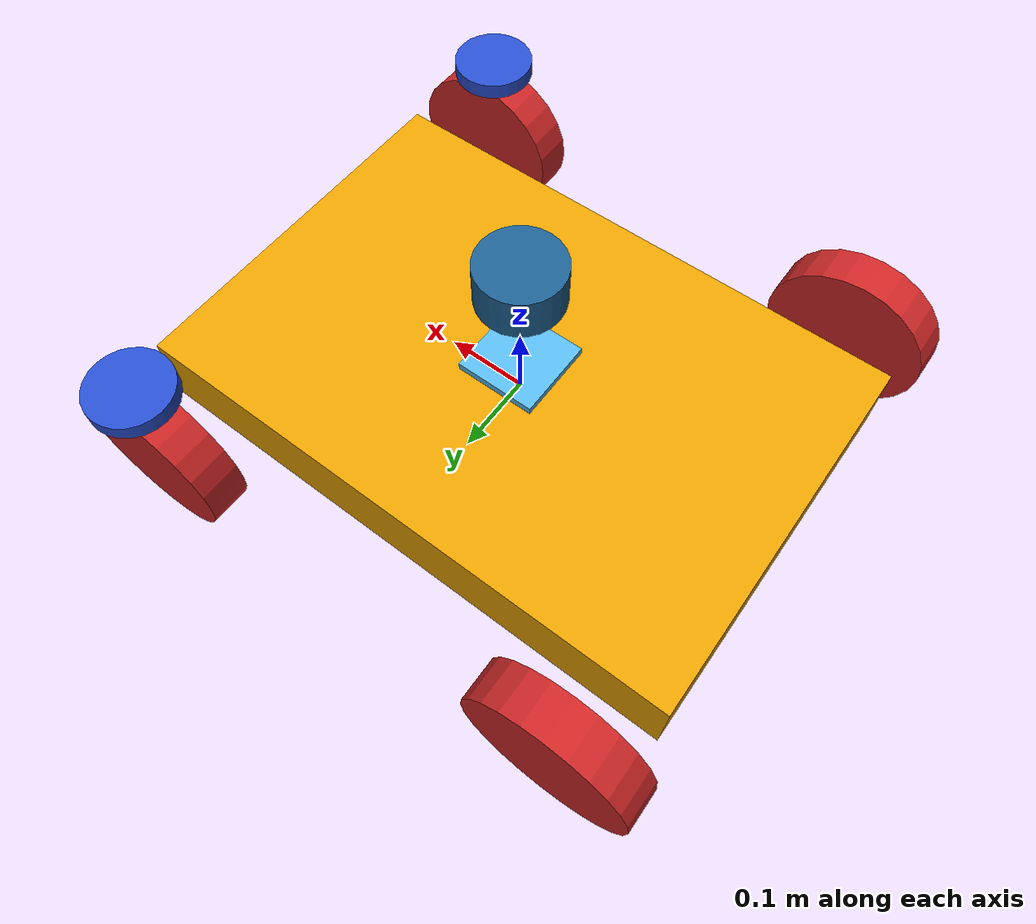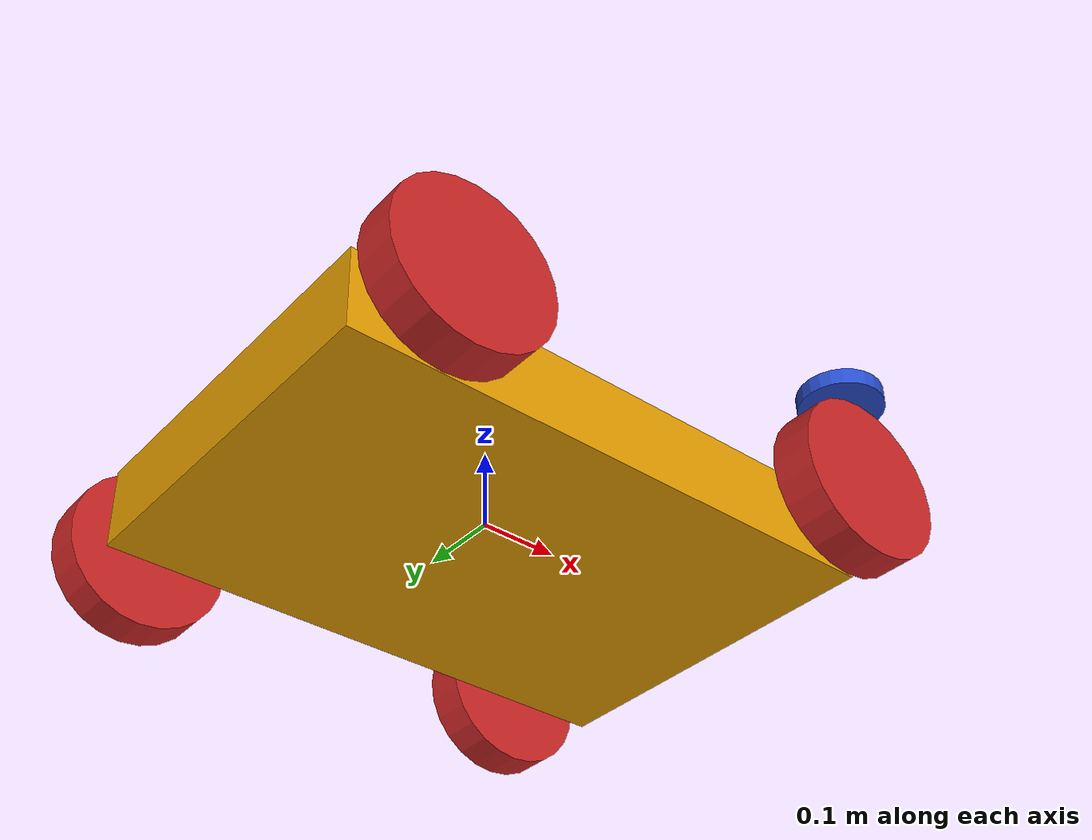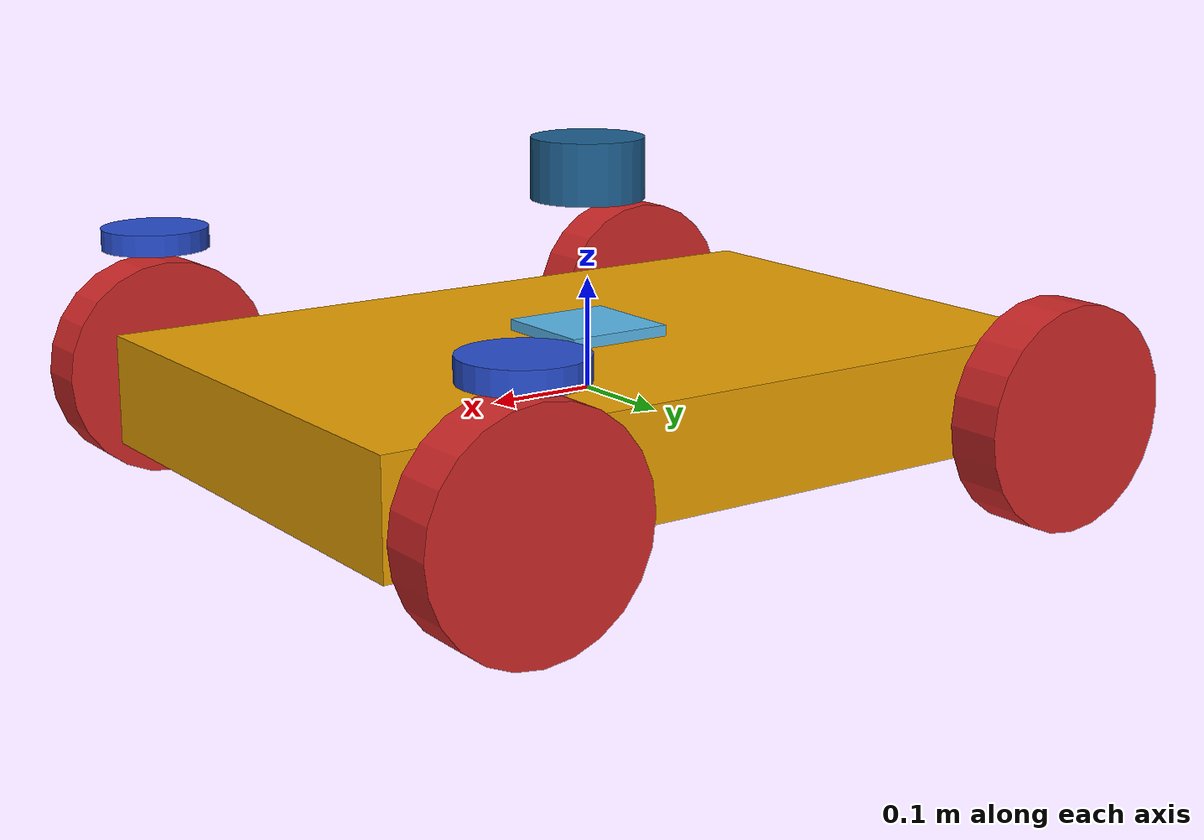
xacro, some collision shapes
<?xml version="1.0"?>
<robot name="mobile_base" xmlns:xacro="http://wiki.ros.org/xacro">
    <!-- Include xacro for inertials, materials and wheels -->
    <xacro:include filename="$(find mobile_base)/urdf/wheel/wheel.xacro" />
    <xacro:include filename="$(find mobile_base)/urdf/hesai_lidar/pandar_XT32M2X.urdf.xacro" />
    <xacro:include filename="$(find mobile_base)/urdf/see3cam/see3cam.urdf.xacro" />

    <!-- Required arg for melodic and kinetic... -->
    <xacro:arg name="namespace" default="/mobile_base" />
    <xacro:property name="namespace" value="$(arg namespace)" scope="global" />

    <!-- Materials -->
    <xacro:macro name="box_inertia" params="m w h d">
        <inertial>
            <origin xyz="0 0 0" rpy="${pi/2} 0 ${pi/2}" />
            <mass value="${m}" />
            <inertia ixx="${(m/12) * (h*h + d*d)}" ixy="0.0" ixz="0.0" iyy="${(m/12) * (w*w + d*d)}"
                iyz="0.0" izz="${(m/12) * (w*w + h*h)}" />
        </inertial>
    </xacro:macro>

    <xacro:macro name="cylinder_inertia" params="m r h">
        <inertial>
            <origin xyz="0 0 0" rpy="${pi/2} 0 0" />
            <mass value="${m}" />
            <inertia ixx="${(m/12) * (3*r*r + h*h)}" ixy="0" ixz="0" iyy="${(m/12) * (3*r*r + h*h)}"
                iyz="0" izz="${(m/2) * (r*r)}" />
        </inertial>
    </xacro:macro>

    <xacro:macro name="sphere_inertia" params="m r">
        <inertial>
            <mass value="${m}" />
            <inertia ixx="${(2/5) * m * (r*r)}" ixy="0.0" ixz="0.0" iyy="${(2/5) * m * (r*r)}"
                iyz="0.0" izz="${(2/5) * m * (r*r)}" />
        </inertial>
    </xacro:macro>

    <!-- Math constants -->
    <xacro:property name="deg_to_rad" value="0.01745329251994329577" />

    <!-- Robot base dimensions -->
    <xacro:property name="base_length" value="0.7" />
    <xacro:property name="base_width" value="0.47" />
    <xacro:property name="base_height" value="0.1" />
    <xacro:property name="base_mass" value="20" />
    <!-- origin mass 5 -->

    <!-- Wheel link dimensions -->
    <xacro:property name="wheel_radius" value="0.1" />
    <xacro:property name="wheel_thickness" value="0.05" />
    <xacro:property name="wheel_mass" value="1" />

    <!-- Steering link dimensions -->
    <xacro:property name="steer_radius" value="0.05" />
    <xacro:property name="steer_thickness" value="0.02" />
    <xacro:property name="steer_mass" value="1" />

    <!-- Axle positions -->
    <xacro:property name="axle_offset" value="0.075" />
    <xacro:property name="steer_offset" value="0.02" />

    <!-- Base link -->
    <link name="base_link">
        <visual>
            <origin xyz="-0.275 0 0" rpy="3.14 0 0" />
            <geometry>
                <!-- 修改mesh,使用dae文件,使用包定位，不要用绝对路径 -->
                <mesh
                    filename="file:///home/simon/SA/mobile_base_ws/src/mobile_base/urdf/base/meshes/moveo_body.dae" />
            </geometry>
        </visual>
        <collision>
            <origin xyz="0 0 0" rpy="0 0 0" />
            <geometry>
                <box size="${base_length} ${base_width} ${base_height}" />
            </geometry>
        </collision>
        <xacro:solid_cuboid_inertial
            rpy="0 0 0" xyz="0 0 0"
            mass="${base_mass}"
            x="${base_length}" y="${base_width}" z="${base_height}" />
    </link>

    <!-- Robot Footprint -->
    <link name="base_footprint">
        <xacro:box_inertia m="0" w="0" d="0" h="0" />
    </link>

    <joint name="base_joint" type="fixed">
        <parent link="base_link" />
        <child link="base_footprint" />
        <origin xyz="0.0 0.0 ${-(wheel_radius+ 0.05)}" rpy="0 0 0" />
    </joint>

    <!-- Steerable front wheels -->
    <xacro:front_wheel_lr
        name="front_right"
        parent="base"
        reflect="-1"
        wheel_radius="${wheel_radius}"
        wheel_thickness="${wheel_thickness}"
        wheel_mass="${wheel_mass}"
        steer_radius="${steer_radius}"
        steer_thickness="${steer_thickness}"
        steer_mass="${steer_mass}"
        base_length="${base_length}"
        base_width="${base_width}"
        axle_offset="${axle_offset}"
        steer_height="${wheel_radius+steer_offset}">
    </xacro:front_wheel_lr>
    <xacro:front_wheel_lr
        name="front_left"
        parent="base"
        reflect="1"
        wheel_radius="${wheel_radius}"
        wheel_thickness="${wheel_thickness}"
        wheel_mass="${wheel_mass}"
        steer_radius="${steer_radius}"
        steer_thickness="${steer_thickness}"
        steer_mass="${steer_mass}"
        base_length="${base_length}"
        base_width="${base_width}"
        axle_offset="${axle_offset}"
        steer_height="${wheel_radius+steer_offset}">
    </xacro:front_wheel_lr>

    <!-- Rear wheels -->
    <xacro:rear_wheel_lr
        name="rear_right"
        parent="base"
        wheel_radius="${wheel_radius}"
        wheel_thickness="${wheel_thickness}"
        wheel_mass="${wheel_mass}">
        <origin xyz="${-base_length/2+axle_offset} ${-base_width/2-axle_offset} 0"
            rpy="${-90 * deg_to_rad} 0 0" />
    </xacro:rear_wheel_lr>
    <xacro:rear_wheel_lr
        name="rear_left"
        parent="base"
        wheel_radius="${wheel_radius}"
        wheel_thickness="${wheel_thickness}"
        wheel_mass="${wheel_mass}">
        <origin xyz="${-base_length/2+axle_offset} ${+base_width/2+axle_offset} 0"
            rpy="${-90 * deg_to_rad} 0 0" />
    </xacro:rear_wheel_lr>

    <link name="lidar_link">
        <inertial>
            <origin xyz="0 0 0" rpy="0 0 0" />
            <mass value="0.125" />
            <inertia ixx="0.001" ixy="0" ixz="0" iyy="0.001" iyz="0" izz="0.001" />
        </inertial>

        <collision>
            <origin xyz="0 0 0" rpy="0 0 0" />
            <geometry>
                <cylinder radius="0.0508" length="0.055" />
            </geometry>
        </collision>

        <visual>
            <origin xyz="0 0 0" rpy="0 0 0" />
            <geometry>
                <cylinder radius="0.0508" length="0.055" />
            </geometry>
            <material name="LightBlue">
                <color rgba="0.11 0.37 0.56 1.0" />
            </material>
        </visual>
    </link>

    <joint name="lidar_joint" type="fixed">
        <parent link="base_link" />
        <child link="lidar_link" />
        <origin xyz="0 0 0.2" rpy="0 0 0" />
    </joint>

    <gazebo reference="lidar_link">
        <sensor name="lidar" type="gpu_lidar">
            <ignition_frame_id>lidar_link</ignition_frame_id>
            <topic>scan</topic>
            <always_on>true</always_on>
            <visualize>true</visualize>
            <update_rate>5</update_rate>
            <ray>
                <scan>
                    <horizontal>
                        <samples>360</samples>
                        <resolution>1.000000</resolution>
                        <min_angle>0.000000</min_angle>
                        <max_angle>6.280000</max_angle>
                    </horizontal>
                </scan>
                <range>
                    <min>0.120000</min>
                    <max>3.5</max>
                    <resolution>0.015000</resolution>
                </range>
                <noise>
                    <type>gaussian</type>
                    <mean>0.0</mean>
                    <stddev>0.01</stddev>
                </noise>
            </ray>
        </sensor>
    </gazebo>

    <!-- IMU -->
    <link name="imu_link">
        <visual>
            <geometry>
                <box size="0.1 0.1 0.1" />
            </geometry>
        </visual>

        <collision>
            <geometry>
                <box size="0.1 0.1 0.1" />
            </geometry>
        </collision>

        <xacro:box_inertia m="0.001" w="0.1" d="0.1" h="0.1" />
    </link>

    <gazebo reference="imu_link">
        <sensor name="imu_sensor" type="imu">
            <ignition_frame_id>imu_link</ignition_frame_id>
            <plugin filename="ignition-gazebo-imu-system" name="ignition::gazebo::systems::Imu">
            </plugin>

            <topic>imu</topic>
            <always_on>true</always_on>
            <update_rate>30</update_rate>
            <visualize>true</visualize>
            <imu>
                <angular_velocity>
                    <x>
                        <noise type="gaussian">
                            <mean>0.0</mean>
                            <stddev>2e-4</stddev>
                            <bias_mean>0.0000075</bias_mean>
                            <bias_stddev>0.0000008</bias_stddev>
                        </noise>
                    </x>
                    <y>
                        <noise type="gaussian">
                            <mean>0.0</mean>
                            <stddev>2e-4</stddev>
                            <bias_mean>0.0000075</bias_mean>
                            <bias_stddev>0.0000008</bias_stddev>
                        </noise>
                    </y>
                    <z>
                        <noise type="gaussian">
                            <mean>0.0</mean>
                            <stddev>2e-4</stddev>
                            <bias_mean>0.0000075</bias_mean>
                            <bias_stddev>0.0000008</bias_stddev>
                        </noise>
                    </z>
                </angular_velocity>
                <linear_acceleration>
                    <x>
                        <noise type="gaussian">
                            <mean>0.0</mean>
                            <stddev>1.7e-2</stddev>
                            <bias_mean>0.1</bias_mean>
                            <bias_stddev>0.001</bias_stddev>
                        </noise>
                    </x>
                    <y>
                        <noise type="gaussian">
                            <mean>0.0</mean>
                            <stddev>1.7e-2</stddev>
                            <bias_mean>0.1</bias_mean>
                            <bias_stddev>0.001</bias_stddev>
                        </noise>
                    </y>
                    <z>
                        <noise type="gaussian">
                            <mean>0.0</mean>
                            <stddev>1.7e-2</stddev>
                            <bias_mean>0.1</bias_mean>
                            <bias_stddev>0.001</bias_stddev>
                        </noise>
                    </z>
                </linear_acceleration>
            </imu>
        </sensor>
    </gazebo>

    <joint name="imu_joint" type="fixed">
        <parent link="base_link" />
        <child link="imu_link" />
        <origin xyz="0 0 0.01" />
    </joint>

    <!-- controller -->
    <ros2_control name="IgnitionSystem" type="system">
        <hardware>
            <plugin>ign_ros2_control/IgnitionSystem</plugin>
        </hardware>

        <joint name="front_left_steer_joint">
            <command_interface name="position" />
            <state_interface name="position" />
            <state_interface name="velocity" />
        </joint>

        <joint name="front_right_steer_joint">
            <command_interface name="position" />
            <state_interface name="position" />
            <state_interface name="velocity" />
        </joint>

        <joint name="rear_left_wheel_joint">
            <command_interface name="velocity" />
            <state_interface name="position" />
            <state_interface name="velocity" />
        </joint>

        <joint name="rear_right_wheel_joint">
            <command_interface name="velocity" />
            <state_interface name="position" />
            <state_interface name="velocity" />
        </joint>

        <joint name="front_left_wheel_joint">
            <state_interface name="position" />
            <state_interface name="velocity" />
        </joint>

        <joint name="front_right_wheel_joint">
            <state_interface name="position" />
            <state_interface name="velocity" />
        </joint>
    </ros2_control>

    <gazebo>
        <plugin filename="ign_ros2_control-system"
            name="ign_ros2_control::IgnitionROS2ControlPlugin">
            <ros>
                <namespace></namespace>
                <remapping>ackermann_steering_controller/reference_unstamped:=cmd_vel</remapping>
                <remapping>ackermann_steering_controller/odometry:=ackodom</remapping>
                <remapping>ackermann_steering_controller/tf_odometry:=tf</remapping>
            </ros>
            <parameters>$(find mobile_base)/config/ackermann_steering_controller.yaml</parameters>
        </plugin>
    </gazebo>
</robot>

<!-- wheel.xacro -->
<robot name="wheel" xmlns:xacro="http://wiki.ros.org/xacro">
  <!-- Include xacro for materials and inertials -->
  <xacro:include filename="$(find mobile_base)/urdf/wheel/materials.xacro"/>
  <xacro:include filename="$(find mobile_base)/urdf/wheel/inertials.xacro"/>

  <!-- Properties -->
  <xacro:property name="steer_effort" value="10.0"/>
  <xacro:property name="steer_velocity" value="5.0"/>
  <xacro:property name="steer_limit_deg" value="45.0"/>

  <!-- Car steering model front (steerable) wheel links (left/right) -->
  <xacro:macro name="front_wheel_lr"
    params="
      name
      parent
      reflect
      wheel_radius
      wheel_thickness
      wheel_mass
      steer_radius
      steer_thickness
      steer_mass
      base_length
      base_width
      axle_offset
      steer_height">
    <link name="${name}_steer_link">
      <visual>
        <origin xyz="0 0 0" rpy="0 0 0"/>
        <geometry>
          <cylinder radius="${steer_radius}" length="${steer_thickness}"/>
        </geometry>
        <material name="blue" />
      </visual>
      <collision>
        <origin xyz="0 0 0" rpy="0 0 0"/>
        <geometry>
          <cylinder radius="${steer_radius}" length="${steer_thickness}"/>
        </geometry>
      </collision>
      <xacro:solid_cylinder_inertial
          rpy="0 0 0" xyz="0 0 0"
          mass="${steer_mass}"
          radius="${steer_radius}" length="${steer_thickness}" />
    </link>

    <joint name="${name}_steer_joint" type="revolute">
      <parent link="${parent}_link"/>
      <child link="${name}_steer_link"/>
      <origin xyz="${base_length/2-axle_offset} ${reflect*(base_width/2+axle_offset)} ${steer_height}" rpy="0 0 0"/>
      <axis xyz="0 0 1"/>
      <limit effort="${steer_effort}"
             lower="${steer_limit_deg * deg_to_rad * -1.0}" upper="${steer_limit_deg * deg_to_rad}"
             velocity="${steer_velocity}"/>
    </joint>

    <link name="${name}_wheel_link">
      <visual>
        <origin xyz="0 0 0" rpy="0 0 0"/>
        <geometry>
          <cylinder radius="${wheel_radius}" length="${wheel_thickness}"/>
        </geometry>
        <material name="red" />
      </visual>
      <collision>
        <origin xyz="0 0 0" rpy="0 0 0"/>
        <geometry>
          <cylinder radius="${wheel_radius}" length="${wheel_thickness}"/>
        </geometry>
      </collision>
      <xacro:solid_cylinder_inertial
          rpy="0 0 0" xyz="0 0 0"
          mass="${wheel_mass}"
          radius="${wheel_radius}" length="${wheel_thickness}" />
    </link>

    <joint name="${name}_wheel_joint" type="continuous">
      <parent link="${name}_steer_link"/>
      <child link="${name}_wheel_link"/>
      <origin xyz="0 0 ${-steer_height}" rpy="${-90 * deg_to_rad} 0 0"/>
      <axis xyz="0 0 1"/>
    </joint>

    <gazebo reference="${name}_steer_link">
      <material>Gazebo/Blue</material>
    </gazebo>

    <gazebo reference="${name}_wheel_link">
      <material>Gazebo/Red</material>
    </gazebo>
  </xacro:macro>

  <!-- Bicycle model rear wheel link (required for steer_drive_controller) -->
  <xacro:macro name="rear_wheel"
    params="
      name
      parent
      wheel_radius
      wheel_thickness
      wheel_mass
      *origin">
    <link name="${name}_wheel_link">
      <visual>
        <origin xyz="0 0 0" rpy="0 0 0"/>
        <geometry>
          <cylinder radius="${wheel_radius}" length="${wheel_thickness}"/>
        </geometry>
        <material name="yellow" />
      </visual>
      <collision>
        <origin xyz="0 0 0" rpy="0 0 0"/>
        <geometry>
          <cylinder radius="${wheel_radius}" length="${wheel_thickness}"/>
        </geometry>
      </collision>
      <xacro:solid_cylinder_inertial
          rpy="0 0 0" xyz="0 0 0"
          mass="${wheel_mass}"
          radius="${wheel_radius}" length="${wheel_thickness}" />
    </link>

    <joint name="${name}_wheel_joint" type="continuous">
      <parent link="${parent}_link"/>
      <child link="${name}_wheel_link"/>
      <xacro:insert_block name="origin"/>
      <axis xyz="0 0 1"/>
    </joint>

    <gazebo reference="${name}_wheel_link">
      <material>Gazebo/Yellow</material>
    </gazebo>
  </xacro:macro>

  <!-- Car steering model rear wheel links (left/right) -->
  <xacro:macro name="rear_wheel_lr"
    params="
      name
      parent
      wheel_radius
      wheel_thickness
      wheel_mass
      *origin">
    <link name="${name}_wheel_link">
      <visual>
        <origin xyz="0 0 0" rpy="0 0 0"/>
        <geometry>
          <cylinder radius="${wheel_radius}" length="${wheel_thickness}"/>
        </geometry>
        <material name="red" />
      </visual>
      <collision>
        <origin xyz="0 0 0" rpy="0 0 0"/>
        <geometry>
          <cylinder radius="${wheel_radius}" length="${wheel_thickness}"/>
        </geometry>
      </collision>
      <xacro:solid_cylinder_inertial
          rpy="0 0 0" xyz="0 0 0"
          mass="${wheel_mass}"
          radius="${wheel_radius}" length="${wheel_thickness}" />
    </link>

    <joint name="${name}_wheel_joint" type="continuous">
      <parent link="${parent}_link"/>
      <child link="${name}_wheel_link"/>
      <xacro:insert_block name="origin"/>
      <axis xyz="0 0 1"/>
    </joint>

    <gazebo reference="${name}_wheel_link">
      <material>Gazebo/Red</material>
    </gazebo>
  </xacro:macro>
</robot>
